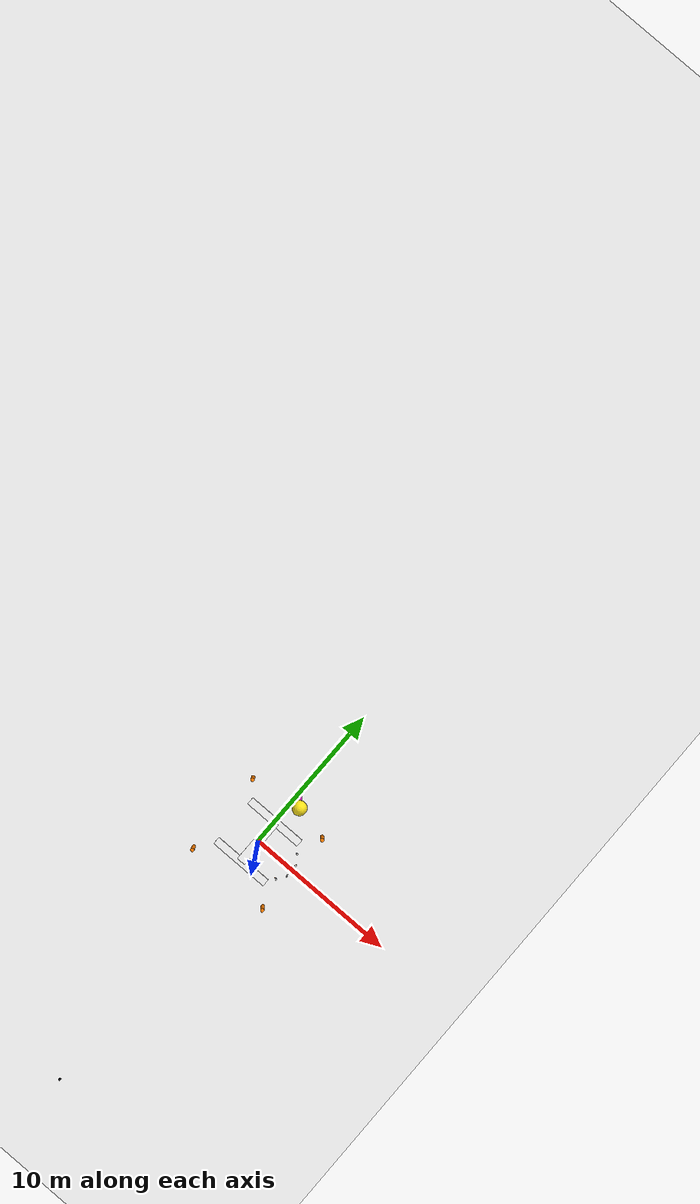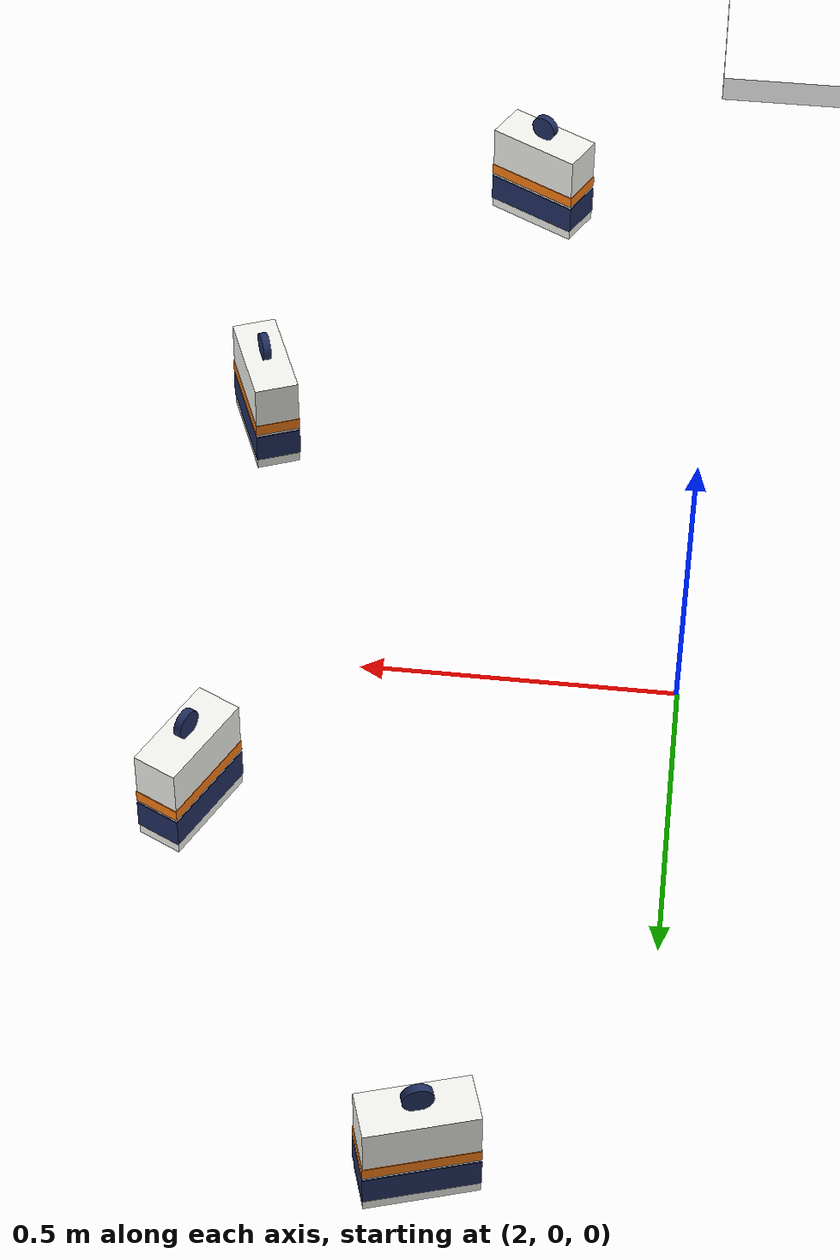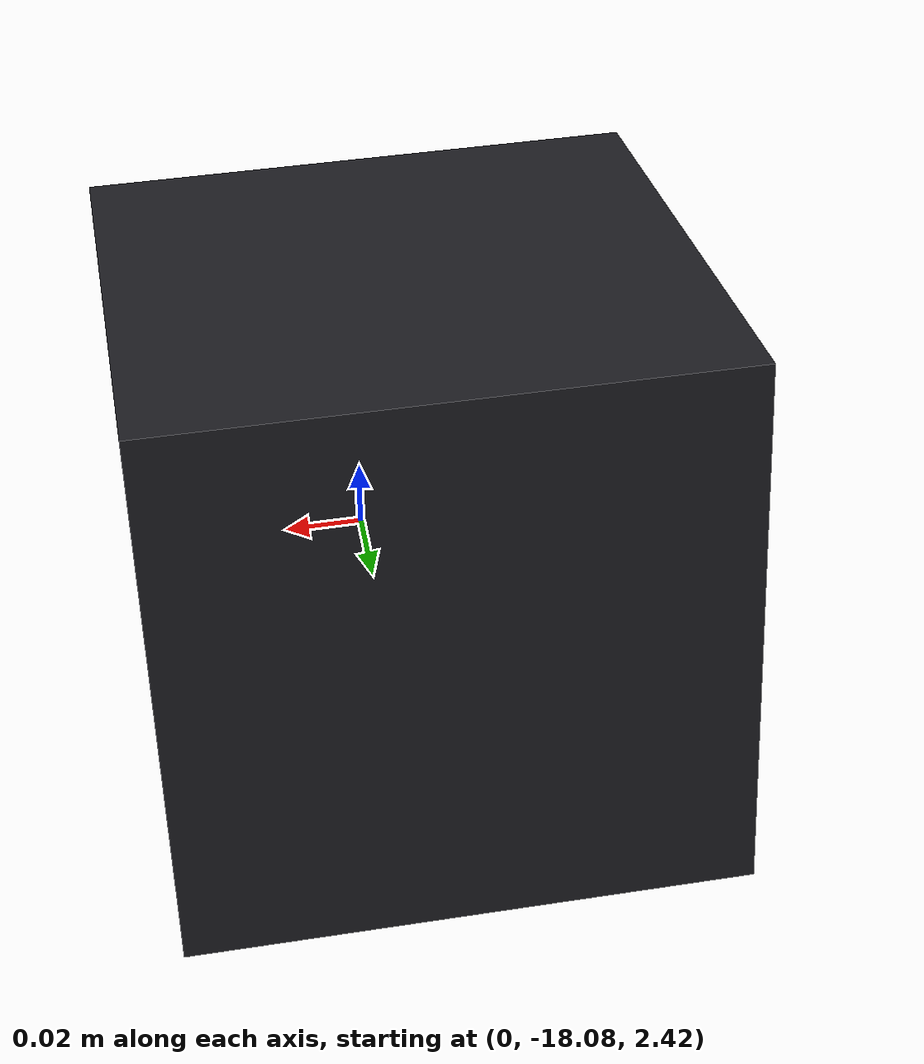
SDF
<?xml version="1.0" ?>
<sdf version="1.9">
  <world name="kmutnb_skyfield">

    <!-- World origin = L&R point (== config site.center == PX4_HOME_*). -->
    <spherical_coordinates>
      <surface_model>EARTH_WGS84</surface_model>
      <latitude_deg>13.8228032</latitude_deg>
      <longitude_deg>100.5116267</longitude_deg>
      <elevation>15</elevation>
      <heading_deg>0</heading_deg>
    </spherical_coordinates>

    <physics name="1ms" type="ignored">
      <max_step_size>0.001</max_step_size>
      <real_time_factor>1.0</real_time_factor>
      <real_time_update_rate>1000</real_time_update_rate>
    </physics>

    <!-- Standard physics + sensors plugins -->
    <plugin filename="gz-sim-physics-system" name="gz::sim::systems::Physics"/>
    <plugin filename="gz-sim-user-commands-system" name="gz::sim::systems::UserCommands"/>
    <plugin filename="gz-sim-scene-broadcaster-system" name="gz::sim::systems::SceneBroadcaster"/>
    <plugin filename="gz-sim-sensors-system" name="gz::sim::systems::Sensors">
      <render_engine>ogre2</render_engine>
    </plugin>
    <plugin filename="gz-sim-imu-system" name="gz::sim::systems::Imu"/>
    <plugin filename="gz-sim-air-pressure-system" name="gz::sim::systems::AirPressure"/>
    <plugin filename="gz-sim-magnetometer-system" name="gz::sim::systems::Magnetometer"/>
    <plugin filename="gz-sim-navsat-system" name="gz::sim::systems::NavSat"/>

    <!-- Wind plugin — a rooftop pitch is exposed, keep the breeze for
         landing-precision realism. Tuning: sitl/aavc_config.yaml.wind_sitl. -->
    <plugin filename="gz-sim-wind-effects-system" name="gz::sim::systems::WindEffects">
      <horizontal>
        <magnitude>
          <time_for_rise>10</time_for_rise>
          <sin>
            <amplitude_percent>0.2</amplitude_percent>
            <period>60</period>
          </sin>
          <noise type="gaussian">
            <mean>0</mean>
            <stddev>0.5</stddev>
          </noise>
        </magnitude>
        <direction>
          <time_for_rise>20</time_for_rise>
          <sin>
            <amplitude>15</amplitude>
            <period>120</period>
          </sin>
        </direction>
      </horizontal>
      <vertical>
        <noise type="gaussian">
          <mean>0</mean>
          <stddev>0.1</stddev>
        </noise>
      </vertical>
    </plugin>
    <wind>
      <linear_velocity>0 0 0</linear_velocity>
    </wind>

    <!-- Sun -->
    <light type="directional" name="sun">
      <cast_shadows>true</cast_shadows>
      <pose>0 0 200 0 0 0</pose>
      <diffuse>1 1 1 1</diffuse>
      <specular>0.6 0.6 0.6 1</specular>
      <attenuation>
        <range>1000</range>
        <constant>0.9</constant>
        <linear>0.01</linear>
        <quadratic>0.001</quadratic>
      </attenuation>
      <direction>-0.5 0.2 -0.9</direction>
    </light>

    <!-- Ambient + sky -->
    <scene>
      <ambient>0.4 0.4 0.4 1</ambient>
      <background>0.7 0.85 1.0</background>
      <sky/>
    </scene>

    <model name="ground_plane">
      <static>true</static>
      <pose>-14.17 19.37 0 0 0 0</pose>
      <link name="link">
        <collision name="collision">
          <geometry>
            <plane>
              <normal>0 0 1</normal>
              <size>300 260</size>
            </plane>
          </geometry>
        </collision>
        <visual name="visual">
          <geometry>
            <plane>
              <normal>0 0 1</normal>
              <size>300 260</size>
            </plane>
          </geometry>
          <material>
            <ambient>0.32 0.33 0.34 1</ambient>
            <diffuse>0.36 0.37 0.38 1</diffuse>
            <specular>0.03 0.03 0.03 1</specular>
          </material>
        </visual>
      </link>
    </model>

    <include>
      <name>ground_sat</name>
      <uri>model://ground_sat</uri>
      <pose>53.64 -17.95 0.002 0 0 0</pose>
    </include>

    <include>
      <name>cargo_box_1</name>
      <uri>model://cargo_box</uri>
      <pose>2.3 1.0 0.10 0 0 0.3</pose>
    </include>
    <include>
      <name>cargo_box_2</name>
      <uri>model://cargo_box</uri>
      <pose>2.3 -1.0 0.10 0 0 -0.5</pose>
    </include>
    <include>
      <name>cargo_box_3</name>
      <uri>model://cargo_box</uri>
      <pose>2.7 0.4 0.10 0 0 1.1</pose>
    </include>
    <include>
      <name>cargo_box_4</name>
      <uri>model://cargo_box</uri>
      <pose>2.7 -0.4 0.10 0 0 -1.2</pose>
    </include>

    <model name="launch_pad">
      <static>true</static>
      <pose>0 0 0.05 0 0 0</pose>
      <link name="link">
        <visual name="visual">
          <geometry>
            <box><size>6 6 0.1</size></box>
          </geometry>
          <material>
            <ambient>0.55 0.55 0.55 1</ambient>
            <diffuse>0.62 0.62 0.62 1</diffuse>
            <specular>0.1 0.1 0.1 1</specular>
          </material>
        </visual>
        <collision name="collision">
          <geometry><box><size>6 6 0.1</size></box></geometry>
        </collision>
      </link>
    </model>

    <include>
      <name>pad_1</name>
      <uri>model://landing_pad_id_1</uri>
      <pose>-30.6 17.3 0 0 0 0.0</pose>
    </include>
    <include>
      <name>pad_2</name>
      <uri>model://landing_pad_id_3</uri>
      <pose>-18.9 25.8 0 0 0 0.95993</pose>
    </include>
    <include>
      <name>pad_3</name>
      <uri>model://landing_pad_id_4</uri>
      <pose>-7.2 34.4 0 0 0 2.09440</pose>
    </include>
    <include>
      <name>pad_4</name>
      <uri>model://landing_pad_id_6</uri>
      <pose>-39.8 29.8 0 0 0 4.18879</pose>
    </include>
    <include>
      <name>pad_5</name>
      <uri>model://landing_pad_id_2</uri>
      <pose>-28.1 38.3 0 0 0 2.96706</pose>
    </include>
    <include>
      <name>pad_6</name>
      <uri>model://landing_pad_id_5</uri>
      <pose>-16.4 46.9 0 0 0 5.23599</pose>
    </include>

    <model name="takeoff_marker">
      <static>true</static>
      <link name="link">
        <visual name="h_bar_left">
          <pose>0 -1.6 0.13 0 0 0</pose>
          <geometry><box><size>4.0 0.5 0.06</size></box></geometry>
          <material><ambient>0.95 0.95 0.95 1</ambient><diffuse>1 1 1 1</diffuse></material>
        </visual>
        <visual name="h_bar_right">
          <pose>0 1.6 0.13 0 0 0</pose>
          <geometry><box><size>4.0 0.5 0.06</size></box></geometry>
          <material><ambient>0.95 0.95 0.95 1</ambient><diffuse>1 1 1 1</diffuse></material>
        </visual>
        <visual name="h_cross">
          <pose>0 0 0.13 0 0 0</pose>
          <geometry><box><size>0.6 3.2 0.06</size></box></geometry>
          <material><ambient>0.95 0.95 0.95 1</ambient><diffuse>1 1 1 1</diffuse></material>
        </visual>
        <visual name="beacon_pole">
          <pose>0 4.0 3.0 0 0 0</pose>
          <geometry><cylinder><radius>0.12</radius><length>6.0</length></cylinder></geometry>
          <material><ambient>0.7 0.0 0.6 1</ambient><diffuse>0.95 0.1 0.85 1</diffuse></material>
        </visual>
        <visual name="beacon_ball">
          <pose>0 4.0 6.2 0 0 0</pose>
          <geometry><sphere><radius>0.45</radius></sphere></geometry>
          <material>
            <ambient>0.9 0.8 0.0 1</ambient>
            <diffuse>1.0 0.9 0.1 1</diffuse>
            <emissive>0.6 0.5 0.0 1</emissive>
          </material>
        </visual>
        <visual name="post_ne"><pose>2.8 2.8 0.6 0 0 0</pose><geometry><cylinder><radius>0.12</radius><length>1.2</length></cylinder></geometry><material><ambient>0.85 0.4 0.0 1</ambient><diffuse>1.0 0.5 0.0 1</diffuse></material></visual>
        <visual name="post_nw"><pose>-2.8 2.8 0.6 0 0 0</pose><geometry><cylinder><radius>0.12</radius><length>1.2</length></cylinder></geometry><material><ambient>0.85 0.4 0.0 1</ambient><diffuse>1.0 0.5 0.0 1</diffuse></material></visual>
        <visual name="post_se"><pose>2.8 -2.8 0.6 0 0 0</pose><geometry><cylinder><radius>0.12</radius><length>1.2</length></cylinder></geometry><material><ambient>0.85 0.4 0.0 1</ambient><diffuse>1.0 0.5 0.0 1</diffuse></material></visual>
        <visual name="post_sw"><pose>-2.8 -2.8 0.6 0 0 0</pose><geometry><cylinder><radius>0.12</radius><length>1.2</length></cylinder></geometry><material><ambient>0.85 0.4 0.0 1</ambient><diffuse>1.0 0.5 0.0 1</diffuse></material></visual>
      </link>
    </model>

    <include>
      <name>spectator_cam</name>
      <uri>model://spectator_cam</uri>
      <pose>0 -18 2.5 0 -0.26 1.5708</pose>
    </include>

    <!-- No decorative trees/houses/cars: this is a rooftop pitch — the
         surroundings come from the ground_sat satellite imagery instead. -->

  </world>
</sdf>

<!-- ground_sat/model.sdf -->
<sdf version="1.9">
  <model name="ground_sat">
    <static>true</static>
    <link name="link">
      <visual name="visual">
        <cast_shadows>false</cast_shadows>
        <geometry>
          <plane><normal>0 0 1</normal><size>250 220</size></plane>
        </geometry>
        <material>
          <ambient>1 1 1 1</ambient>
          <diffuse>1 1 1 1</diffuse>
          <specular>0.1 0.1 0.1 1</specular>
          <pbr>
            <metal>
              <albedo_map>materials/textures/sat_real.png</albedo_map>
              <metalness>0</metalness>
              <roughness>1</roughness>
            </metal>
          </pbr>
        </material>
      </visual>
    </link>
  </model>
</sdf>

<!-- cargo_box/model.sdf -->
<sdf version="1.9">
  <model name="cargo_box">
    <static>true</static>
    <link name="link">
      <!-- white card body (16 x 7 x 18 cm), base at z=0 -->
      <visual name="body">
        <pose>0 0 0.09 0 0 0</pose>
        <geometry>
          <box><size>0.16 0.07 0.18</size></box>
        </geometry>
        <material>
          <ambient>0.92 0.92 0.90 1</ambient>
          <diffuse>0.96 0.96 0.94 1</diffuse>
          <specular>0.05 0.05 0.05 1</specular>
        </material>
      </visual>
      <!-- navy print band (the heart-box artwork) -->
      <visual name="print_band">
        <pose>0 0 0.055 0 0 0</pose>
        <geometry>
          <box><size>0.162 0.072 0.05</size></box>
        </geometry>
        <material>
          <ambient>0.10 0.14 0.30 1</ambient>
          <diffuse>0.13 0.18 0.38 1</diffuse>
        </material>
      </visual>
      <!-- orange accent stripe -->
      <visual name="accent_stripe">
        <pose>0 0 0.095 0 0 0</pose>
        <geometry>
          <box><size>0.162 0.072 0.02</size></box>
        </geometry>
        <material>
          <ambient>0.85 0.40 0.05 1</ambient>
          <diffuse>1.00 0.50 0.08 1</diffuse>
        </material>
      </visual>
      <!-- handle loop over the top -->
      <visual name="handle">
        <pose>0 0 0.20 1.5708 0 0</pose>
        <geometry>
          <cylinder><radius>0.022</radius><length>0.012</length></cylinder>
        </geometry>
        <material>
          <ambient>0.10 0.14 0.30 1</ambient>
          <diffuse>0.13 0.18 0.38 1</diffuse>
        </material>
      </visual>
      <!-- single collision = the card box itself -->
      <collision name="collision">
        <pose>0 0 0.09 0 0 0</pose>
        <geometry>
          <box><size>0.16 0.07 0.18</size></box>
        </geometry>
      </collision>
    </link>
  </model>
</sdf>

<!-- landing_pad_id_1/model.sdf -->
<sdf version="1.9">
  <model name="landing_pad_id_1">
    <static>true</static>
    <link name="pad">
      <pose>0 0 0.005 0 0 0</pose>
      <visual name="pad_visual">
        <geometry>
          <box>
            <size>1.0 1.0 0.01</size>
          </box>
        </geometry>
        <material>
          <pbr>
            <metal>
              <albedo_map>materials/textures/pad_1.png</albedo_map>
            </metal>
          </pbr>
          <ambient>1 1 1 1</ambient>
          <diffuse>1 1 1 1</diffuse>
        </material>
      </visual>
      <collision name="pad_collision">
        <geometry>
          <box>
            <size>1.0 1.0 0.01</size>
          </box>
        </geometry>
      </collision>
    </link>
  </model>
</sdf>

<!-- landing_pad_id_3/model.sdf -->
<sdf version="1.9">
  <model name="landing_pad_id_3">
    <static>true</static>
    <link name="pad">
      <pose>0 0 0.005 0 0 0</pose>
      <visual name="pad_visual">
        <geometry>
          <box>
            <size>1.0 1.0 0.01</size>
          </box>
        </geometry>
        <material>
          <pbr>
            <metal>
              <albedo_map>materials/textures/pad_3.png</albedo_map>
            </metal>
          </pbr>
          <ambient>1 1 1 1</ambient>
          <diffuse>1 1 1 1</diffuse>
        </material>
      </visual>
      <collision name="pad_collision">
        <geometry>
          <box>
            <size>1.0 1.0 0.01</size>
          </box>
        </geometry>
      </collision>
    </link>
  </model>
</sdf>

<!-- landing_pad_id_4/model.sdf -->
<sdf version="1.9">
  <model name="landing_pad_id_4">
    <static>true</static>
    <link name="pad">
      <pose>0 0 0.005 0 0 0</pose>
      <visual name="pad_visual">
        <geometry>
          <box>
            <size>1.0 1.0 0.01</size>
          </box>
        </geometry>
        <material>
          <pbr>
            <metal>
              <albedo_map>materials/textures/pad_4.png</albedo_map>
            </metal>
          </pbr>
          <ambient>1 1 1 1</ambient>
          <diffuse>1 1 1 1</diffuse>
        </material>
      </visual>
      <collision name="pad_collision">
        <geometry>
          <box>
            <size>1.0 1.0 0.01</size>
          </box>
        </geometry>
      </collision>
    </link>
  </model>
</sdf>

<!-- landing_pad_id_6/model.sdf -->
<sdf version="1.9">
  <model name="landing_pad_id_6">
    <static>true</static>
    <link name="pad">
      <pose>0 0 0.005 0 0 0</pose>
      <visual name="pad_visual">
        <geometry>
          <box>
            <size>1.0 1.0 0.01</size>
          </box>
        </geometry>
        <material>
          <pbr>
            <metal>
              <albedo_map>materials/textures/pad_6.png</albedo_map>
            </metal>
          </pbr>
          <ambient>1 1 1 1</ambient>
          <diffuse>1 1 1 1</diffuse>
        </material>
      </visual>
      <collision name="pad_collision">
        <geometry>
          <box>
            <size>1.0 1.0 0.01</size>
          </box>
        </geometry>
      </collision>
    </link>
  </model>
</sdf>

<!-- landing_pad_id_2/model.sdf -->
<sdf version="1.9">
  <model name="landing_pad_id_2">
    <static>true</static>
    <link name="pad">
      <pose>0 0 0.005 0 0 0</pose>
      <visual name="pad_visual">
        <geometry>
          <box>
            <size>1.0 1.0 0.01</size>
          </box>
        </geometry>
        <material>
          <pbr>
            <metal>
              <albedo_map>materials/textures/pad_2.png</albedo_map>
            </metal>
          </pbr>
          <ambient>1 1 1 1</ambient>
          <diffuse>1 1 1 1</diffuse>
        </material>
      </visual>
      <collision name="pad_collision">
        <geometry>
          <box>
            <size>1.0 1.0 0.01</size>
          </box>
        </geometry>
      </collision>
    </link>
  </model>
</sdf>

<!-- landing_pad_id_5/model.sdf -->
<sdf version="1.9">
  <model name="landing_pad_id_5">
    <static>true</static>
    <link name="pad">
      <pose>0 0 0.005 0 0 0</pose>
      <visual name="pad_visual">
        <geometry>
          <box>
            <size>1.0 1.0 0.01</size>
          </box>
        </geometry>
        <material>
          <pbr>
            <metal>
              <albedo_map>materials/textures/pad_5.png</albedo_map>
            </metal>
          </pbr>
          <ambient>1 1 1 1</ambient>
          <diffuse>1 1 1 1</diffuse>
        </material>
      </visual>
      <collision name="pad_collision">
        <geometry>
          <box>
            <size>1.0 1.0 0.01</size>
          </box>
        </geometry>
      </collision>
    </link>
  </model>
</sdf>

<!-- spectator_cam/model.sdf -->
<sdf version="1.9">
  <model name="spectator_cam">
    <static>true</static>
    <link name="link">
      <visual name="body">
        <geometry><box><size>0.12 0.12 0.12</size></box></geometry>
        <material>
          <ambient>0.05 0.05 0.06 1</ambient>
          <diffuse>0.12 0.12 0.14 1</diffuse>
        </material>
      </visual>
      <sensor name="spectator_imager" type="camera">
        <pose>0 0 0 0 0 0</pose>
        <camera>
          <horizontal_fov>1.25</horizontal_fov>
          <image>
            <width>640</width>
            <height>480</height>
          </image>
          <clip>
            <near>0.1</near>
            <far>1000</far>
          </clip>
        </camera>
        <always_on>1</always_on>
        <update_rate>15</update_rate>
        <visualize>false</visualize>
        <topic>/spectator_camera</topic>
      </sensor>
    </link>
  </model>
</sdf>
